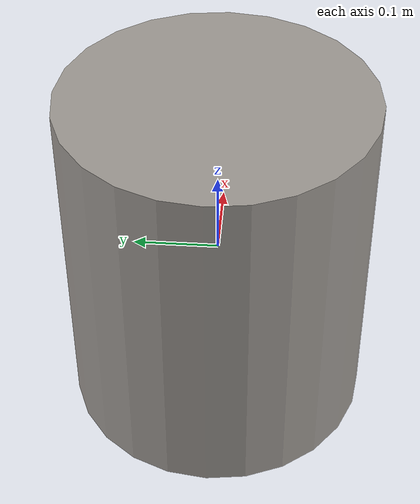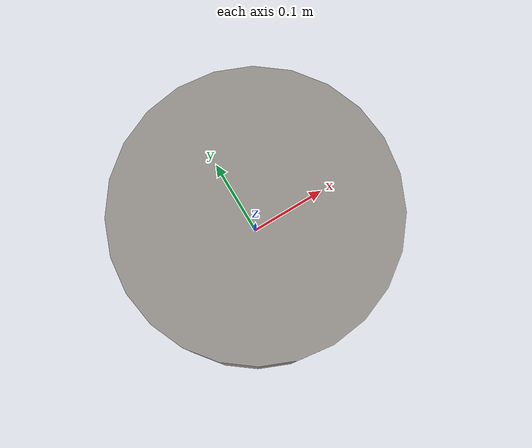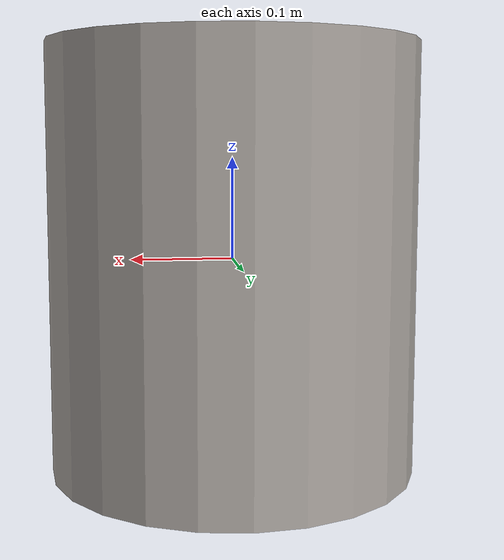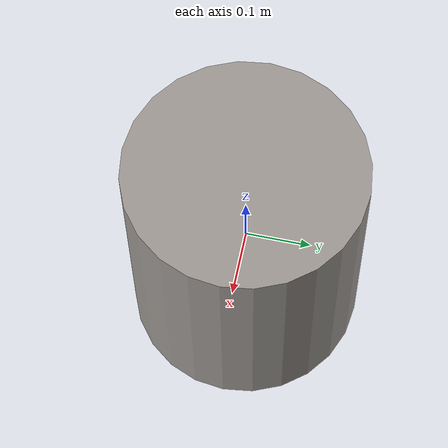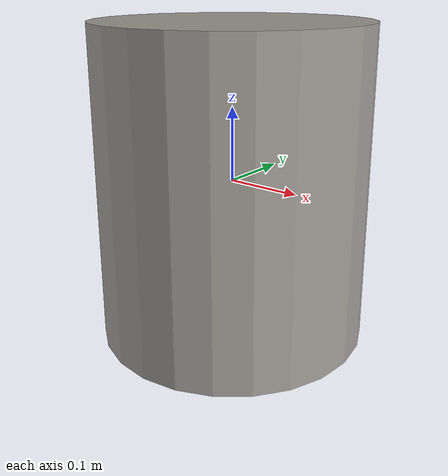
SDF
<?xml version="1.0"?>
<sdf version="1.6">
  <model name="utility_bin">
    <static>true</static>
    <link name="link">
      <collision name="col">
        <geometry>
          <cylinder>
            <radius>0.18</radius>
            <length>0.42</length>
          </cylinder>
        </geometry>
      </collision>
      <visual name="vis">
        <geometry>
          <cylinder>
            <radius>0.18</radius>
            <length>0.42</length>
          </cylinder>
        </geometry>
        <material>
          <ambient>0.62 0.6 0.58 1</ambient>
          <diffuse>0.62 0.6 0.58 1</diffuse>
        </material>
      </visual>
    </link>
  </model>
</sdf>
